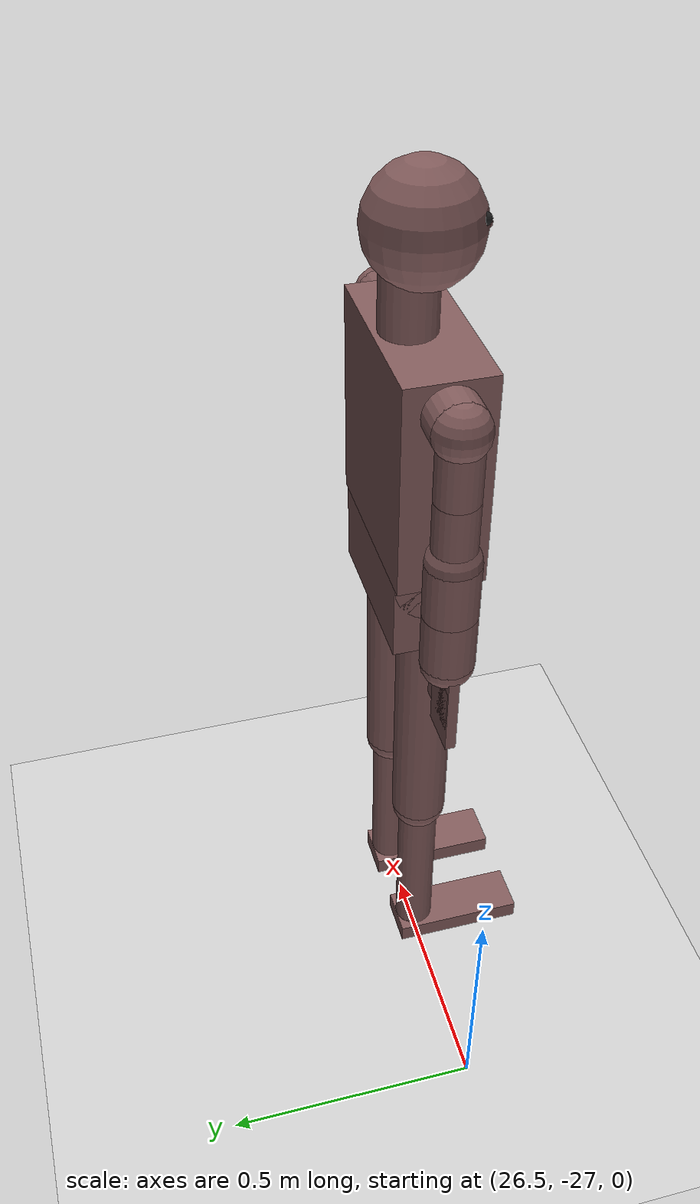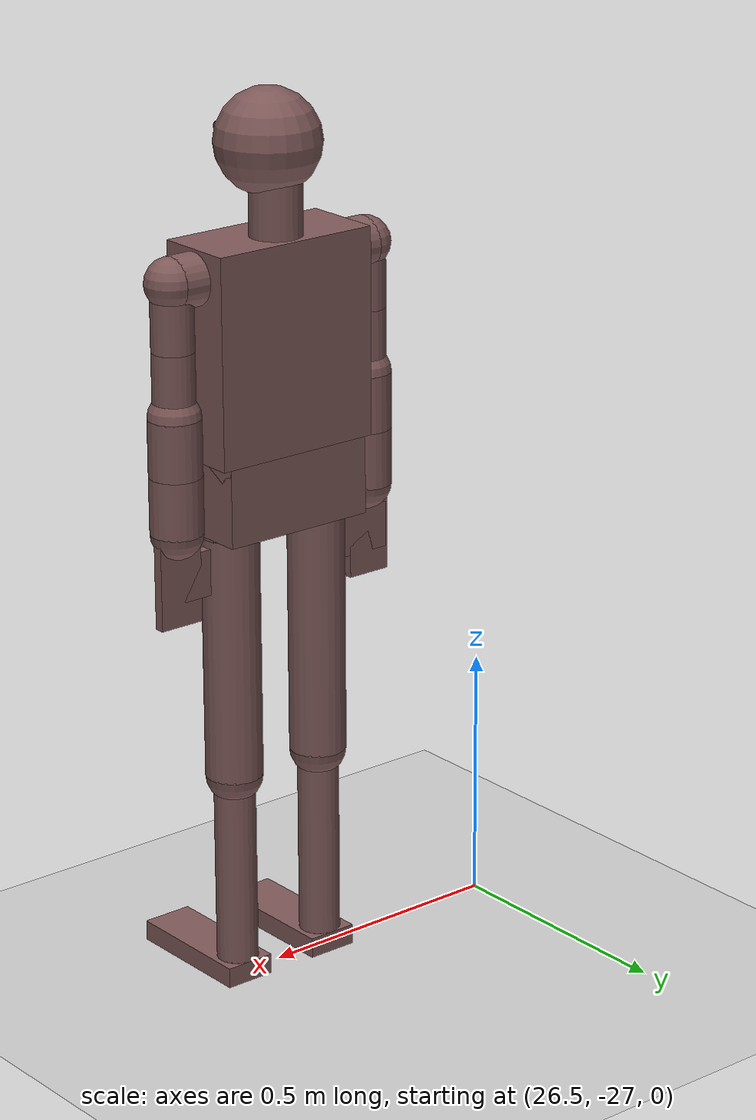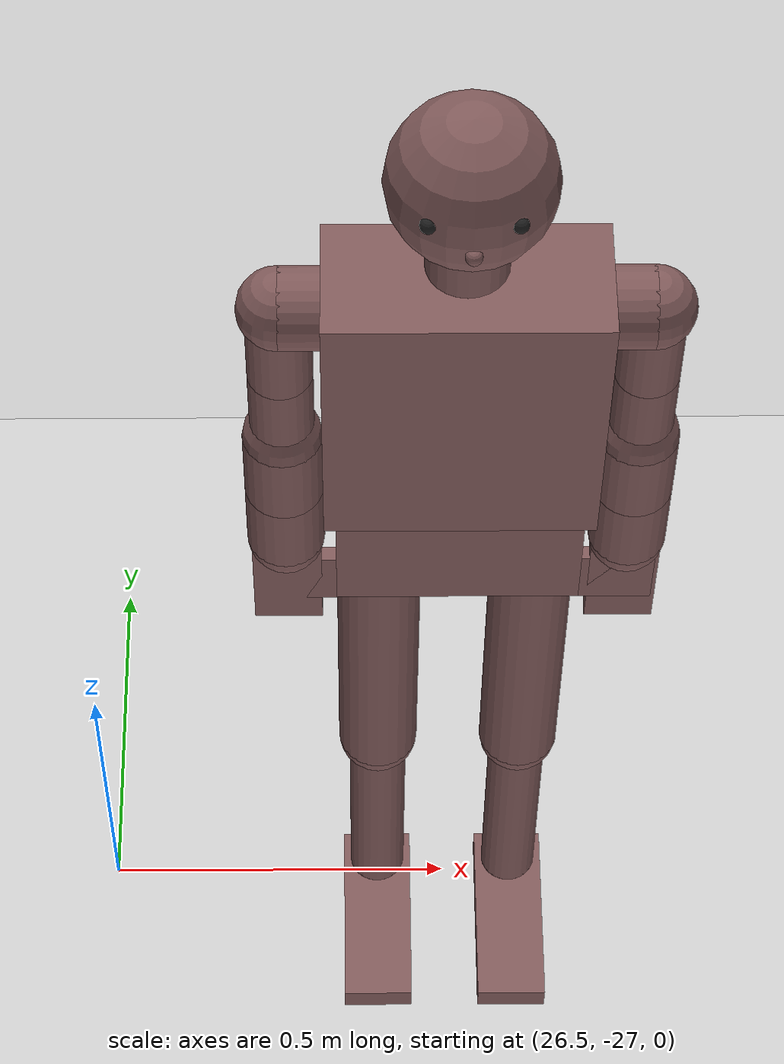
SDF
<sdf version="1.6">
 <world name="default">
  <model name="ground_plane">
   <static>1</static>
   <link name="link">
    <collision name="collision">
     <geometry><plane><normal>0 0 1</normal><size>100 100</size></plane></geometry>
     <surface><friction><ode><mu>100</mu><mu2>50</mu2></ode></friction></surface>
    </collision>
    <visual name="visual">
     <cast_shadows>0</cast_shadows>
     <geometry><plane><normal>0 0 1</normal><size>100 100</size></plane></geometry>
     <material>
      <script><uri>file://media/materials/scripts/gazebo.material</uri><name>Gazebo/Grey</name></script>
     </material>
    </visual>
   </link>
  </model>
  <model name="victim175_hot_moving">
   <static>1</static>
   <self_collide>1</self_collide>
   <link name="head">
    <pose>0 0 1.625 0 -0 0</pose>
    <visual name="visual">
     <geometry><sphere><radius>0.1</radius></sphere></geometry>
     <material>
      <emissive>0.5 0.35 0.35 1</emissive>
      <ambient>0.5 0.35 0.35 1</ambient>
      <diffuse>0.5 0.35 0.35 1</diffuse>
      <specular>0 0 0 0</specular>
     </material>
    </visual>
    <collision name="collision"><geometry><sphere><radius>0.1</radius></sphere></geometry></collision>
    <visual name="visual_nose">
     <pose>0 -0.1 -0.01 0 -0 0</pose>
     <geometry><sphere><radius>0.01</radius></sphere></geometry>
     <material>
      <emissive>0.5 0.35 0.35 1</emissive>
      <ambient>0.5 0.35 0.35 1</ambient>
      <diffuse>0.5 0.35 0.35 1</diffuse>
      <specular>0 0 0 0</specular>
     </material>
    </visual>
    <visual name="visual_rEye">
     <pose>-0.05 -0.08 0.02 0 -0 0</pose>
     <geometry><sphere><radius>0.01</radius></sphere></geometry>
     <material>
      <script><uri>file://media/materials/scripts/gazebo.material</uri><name>Gazebo/Black</name></script>
     </material>
    </visual>
    <visual name="visual_lEye">
     <pose>0.05 -0.08 0.02 0 -0 0</pose>
     <geometry><sphere><radius>0.01</radius></sphere></geometry>
     <material>
      <script><uri>file://media/materials/scripts/gazebo.material</uri><name>Gazebo/Black</name></script>
     </material>
    </visual>
    <self_collide>1</self_collide>
   </link>
   <link name="neck">
    <pose>0 0.02 1.49 0 -0 0</pose>
    <visual name="visual">
     <geometry><cylinder><radius>0.05</radius><length>0.15</length></cylinder></geometry>
     <material>
      <emissive>0.5 0.35 0.35 1</emissive>
      <ambient>0.5 0.35 0.35 1</ambient>
      <diffuse>0.5 0.35 0.35 1</diffuse>
      <specular>0 0 0 0</specular>
     </material>
    </visual>
    <collision name="collision">
     <geometry><cylinder><radius>0.05</radius><length>0.15</length></cylinder></geometry>
    </collision>
    <self_collide>1</self_collide>
   </link>
   <joint name="neck_head" type="revolute">
    <pose>0 0.02 -0.075 0 -0 0</pose>
    <child>head</child>
    <parent>neck</parent>
    <axis>
     <xyz>0 0 -1</xyz>
     <limit><lower>-1.7</lower><upper>1.7</upper></limit>
     <dynamics>
      <friction>0.01</friction>
      <spring_reference>0</spring_reference>
      <spring_stiffness>0</spring_stiffness>
     </dynamics>
     <use_parent_model_frame>0</use_parent_model_frame>
    </axis>
   </joint>
   <link name="body">
    <pose>0 0 1.255 0 -0 0</pose>
    <visual name="visual">
     <geometry><box><size>0.34 0.16 0.4</size></box></geometry>
     <material>
      <emissive>0.5 0.35 0.35 1</emissive>
      <ambient>0.5 0.35 0.35 1</ambient>
      <diffuse>0.5 0.35 0.35 1</diffuse>
      <specular>0 0 0 0</specular>
     </material>
    </visual>
    <collision name="collision"><geometry><box><size>0.34 0.16 0.4</size></box></geometry></collision>
    <self_collide>1</self_collide>
   </link>
   <joint name="body_neck" type="revolute">
    <pose>0 0.06 -0.075 0 -0 0</pose>
    <child>neck</child>
    <parent>body</parent>
    <axis>
     <xyz>1 0 0</xyz>
     <limit><lower>-0.2</lower><upper>1</upper></limit>
     <dynamics>
      <friction>0.01</friction>
      <spring_reference>0</spring_reference>
      <spring_stiffness>0</spring_stiffness>
     </dynamics>
     <use_parent_model_frame>0</use_parent_model_frame>
    </axis>
   </joint>
   <link name="waist">
    <pose>0 0 1.005 0 -0 0</pose>
    <visual name="visual">
     <pose>0 0 -0.025 0 -0 0</pose>
     <geometry><box><size>0.31 0.16 0.15</size></box></geometry>
     <material>
      <emissive>0.5 0.35 0.35 1</emissive>
      <ambient>0.5 0.35 0.35 1</ambient>
      <diffuse>0.5 0.35 0.35 1</diffuse>
      <specular>0 0 0 0</specular>
     </material>
    </visual>
    <collision name="collision"><geometry><box><size>0.31 0.16 0.1</size></box></geometry></collision>
    <visual name="visual2">
     <pose>0 0 0.05 3.14159 1.57079 3.14159</pose>
     <geometry><cylinder><radius>0.08</radius><length>0.31</length></cylinder></geometry>
     <material>
      <emissive>0.5 0.35 0.35 1</emissive>
      <ambient>0.5 0.35 0.35 1</ambient>
      <diffuse>0.5 0.35 0.35 1</diffuse>
      <specular>0 0 0 0</specular>
     </material>
    </visual>
    <collision name="collision2">
     <pose>0 0 0.05 3.14159 1.57079 3.14159</pose>
     <geometry><cylinder><radius>0.08</radius><length>0.31</length></cylinder></geometry>
    </collision>
    <self_collide>1</self_collide>
   </link>
   <joint name="body_waist" type="revolute">
    <pose>0 0 0.05 0 -0 0</pose>
    <child>waist</child>
    <parent>body</parent>
    <axis>
     <xyz>-1 0 0</xyz>
     <limit><lower>0</lower><upper>0</upper></limit>
     <dynamics>
      <friction>0.01</friction>
      <spring_reference>0</spring_reference>
      <spring_stiffness>0</spring_stiffness>
     </dynamics>
     <use_parent_model_frame>0</use_parent_model_frame>
    </axis>
   </joint>
   <link name="rHand">
    <pose>-0.22 0 0.84 0 -0 0</pose>
    <visual name="visual">
     <geometry><box><size>0.09 0.02 0.18</size></box></geometry>
     <material>
      <emissive>0.5 0.35 0.35 1</emissive>
      <ambient>0.5 0.35 0.35 1</ambient>
      <diffuse>0.5 0.35 0.35 1</diffuse>
      <specular>0 0 0 0</specular>
     </material>
    </visual>
    <collision name="collision"><geometry><box><size>0.09 0.02 0.18</size></box></geometry></collision>
    <visual name="visual2">
     <pose>0.02 0 0 0 -0 0</pose>
     <geometry><box><size>0.12 0.02 0.09</size></box></geometry>
     <material>
      <emissive>0.5 0.35 0.35 1</emissive>
      <ambient>0.5 0.35 0.35 1</ambient>
      <diffuse>0.5 0.35 0.35 1</diffuse>
      <specular>0 0 0 0</specular>
     </material>
    </visual>
    <collision name="collision2">
     <pose>0.02 0 0 0 -0 0</pose>
     <geometry><box><size>0.12 0.02 0.09</size></box></geometry>
    </collision>
    <self_collide>1</self_collide>
   </link>
   <link name="lHand">
    <pose>0.22 0 0.84 0 -0 0</pose>
    <visual name="visual">
     <geometry><box><size>0.09 0.02 0.18</size></box></geometry>
     <material>
      <emissive>0.5 0.35 0.35 1</emissive>
      <ambient>0.5 0.35 0.35 1</ambient>
      <diffuse>0.5 0.35 0.35 1</diffuse>
      <specular>0 0 0 0</specular>
     </material>
    </visual>
    <collision name="collision"><geometry><box><size>0.09 0.02 0.18</size></box></geometry></collision>
    <visual name="visual2">
     <pose>-0.02 0 0 0 -0 0</pose>
     <geometry><box><size>0.12 0.02 0.09</size></box></geometry>
     <material>
      <emissive>0.5 0.35 0.35 1</emissive>
      <ambient>0.5 0.35 0.35 1</ambient>
      <diffuse>0.5 0.35 0.35 1</diffuse>
      <specular>0 0 0 0</specular>
     </material>
    </visual>
    <collision name="collision2">
     <pose>-0.02 0 0 0 -0 0</pose>
     <geometry><box><size>0.12 0.02 0.09</size></box></geometry>
    </collision>
    <self_collide>1</self_collide>
   </link>
   <link name="rFoot">
    <pose>-0.1 -0.095 0.02 0 -0 0</pose>
    <visual name="visual">
     <geometry><box><size>0.1 0.27 0.04</size></box></geometry>
     <material>
      <emissive>0.5 0.35 0.35 1</emissive>
      <ambient>0.5 0.35 0.35 1</ambient>
      <diffuse>0.5 0.35 0.35 1</diffuse>
      <specular>0 0 0 0</specular>
     </material>
    </visual>
    <collision name="collision"><geometry><box><size>0.1 0.27 0.04</size></box></geometry></collision>
    <self_collide>1</self_collide>
   </link>
   <link name="lFoot">
    <pose>0.1 -0.095 0.02 0 -0 0</pose>
    <visual name="visual">
     <geometry><box><size>0.1 0.27 0.04</size></box></geometry>
     <material>
      <emissive>0.5 0.35 0.35 1</emissive>
      <ambient>0.5 0.35 0.35 1</ambient>
      <diffuse>0.5 0.35 0.35 1</diffuse>
      <specular>0 0 0 0</specular>
     </material>
    </visual>
    <collision name="collision"><geometry><box><size>0.1 0.27 0.04</size></box></geometry></collision>
    <self_collide>1</self_collide>
   </link>
   <link name="rLeg2">
    <pose>-0.1 0 0.23 0 -0 0</pose>
    <visual name="visual">
     <geometry><cylinder><radius>0.04</radius><length>0.38</length></cylinder></geometry>
     <material>
      <emissive>0.5 0.35 0.35 1</emissive>
      <ambient>0.5 0.35 0.35 1</ambient>
      <diffuse>0.5 0.35 0.35 1</diffuse>
      <specular>0 0 0 0</specular>
     </material>
    </visual>
    <collision name="collision">
     <geometry><cylinder><radius>0.04</radius><length>0.38</length></cylinder></geometry>
    </collision>
    <visual name="visual2">
     <pose>0 0 -0.19 0 -0 0</pose>
     <geometry><sphere><radius>0.04</radius></sphere></geometry>
     <material>
      <emissive>0.5 0.35 0.35 1</emissive>
      <ambient>0.5 0.35 0.35 1</ambient>
      <diffuse>0.5 0.35 0.35 1</diffuse>
      <specular>0 0 0 0</specular>
     </material>
    </visual>
    <collision name="collision2">
     <pose>0 0 -0.19 0 -0 0</pose>
     <geometry><sphere><radius>0.04</radius></sphere></geometry>
    </collision>
    <self_collide>1</self_collide>
   </link>
   <link name="lLeg2">
    <pose>0.1 0 0.23 0 -0 0</pose>
    <visual name="visual">
     <geometry><cylinder><radius>0.04</radius><length>0.38</length></cylinder></geometry>
     <material>
      <emissive>0.5 0.35 0.35 1</emissive>
      <ambient>0.5 0.35 0.35 1</ambient>
      <diffuse>0.5 0.35 0.35 1</diffuse>
      <specular>0 0 0 0</specular>
     </material>
    </visual>
    <collision name="collision">
     <geometry><cylinder><radius>0.04</radius><length>0.38</length></cylinder></geometry>
    </collision>
    <visual name="visual2">
     <pose>0 0 -0.19 0 -0 0</pose>
     <geometry><sphere><radius>0.04</radius></sphere></geometry>
     <material>
      <emissive>0.5 0.35 0.35 1</emissive>
      <ambient>0.5 0.35 0.35 1</ambient>
      <diffuse>0.5 0.35 0.35 1</diffuse>
      <specular>0 0 0 0</specular>
     </material>
    </visual>
    <collision name="collision2">
     <pose>0 0 -0.19 0 -0 0</pose>
     <geometry><sphere><radius>0.04</radius></sphere></geometry>
    </collision>
    <self_collide>1</self_collide>
   </link>
   <joint name="rLeg2_rFoot" type="revolute">
    <pose>0 0.095 0.02 0 -0 0</pose>
    <child>rFoot</child>
    <parent>rLeg2</parent>
    <axis>
     <xyz>1 0 0</xyz>
     <limit><lower>0</lower><upper>0</upper></limit>
     <dynamics>
      <friction>0.01</friction>
      <spring_reference>0</spring_reference>
      <spring_stiffness>0</spring_stiffness>
     </dynamics>
     <use_parent_model_frame>0</use_parent_model_frame>
    </axis>
   </joint>
   <joint name="lLeg2_lFoot" type="revolute">
    <pose>0 0.095 0.02 0 -0 0</pose>
    <child>lFoot</child>
    <parent>lLeg2</parent>
    <axis>
     <xyz>1 0 0</xyz>
     <limit><lower>0</lower><upper>0</upper></limit>
     <dynamics>
      <friction>0.01</friction>
      <spring_reference>0</spring_reference>
      <spring_stiffness>0</spring_stiffness>
     </dynamics>
     <use_parent_model_frame>0</use_parent_model_frame>
    </axis>
   </joint>
   <link name="rLeg1">
    <pose>-0.1 0 0.66 0 -0 0</pose>
    <visual name="visual">
     <geometry><cylinder><radius>0.055</radius><length>0.48</length></cylinder></geometry>
     <material>
      <emissive>0.5 0.35 0.35 1</emissive>
      <ambient>0.5 0.35 0.35 1</ambient>
      <diffuse>0.5 0.35 0.35 1</diffuse>
      <specular>0 0 0 0</specular>
     </material>
    </visual>
    <collision name="collision">
     <geometry><cylinder><radius>0.055</radius><length>0.48</length></cylinder></geometry>
    </collision>
    <visual name="visual2">
     <pose>0 0 -0.24 0 -0 0</pose>
     <geometry><sphere><radius>0.055</radius></sphere></geometry>
     <material>
      <emissive>0.5 0.35 0.35 1</emissive>
      <ambient>0.5 0.35 0.35 1</ambient>
      <diffuse>0.5 0.35 0.35 1</diffuse>
      <specular>0 0 0 0</specular>
     </material>
    </visual>
    <collision name="collision2">
     <pose>0 0 -0.24 0 -0 0</pose>
     <geometry><sphere><radius>0.055</radius></sphere></geometry>
    </collision>
    <visual name="visual3">
     <pose>0 0 0.24 0 -0 0</pose>
     <geometry><sphere><radius>0.055</radius></sphere></geometry>
     <material>
      <emissive>0.5 0.35 0.35 1</emissive>
      <ambient>0.5 0.35 0.35 1</ambient>
      <diffuse>0.5 0.35 0.35 1</diffuse>
      <specular>0 0 0 0</specular>
     </material>
    </visual>
    <collision name="collision3">
     <pose>0 0 0.24 0 -0 0</pose>
     <geometry><sphere><radius>0.055</radius></sphere></geometry>
    </collision>
    <self_collide>1</self_collide>
   </link>
   <link name="lLeg1">
    <pose>0.1 0 0.66 0 -0 0</pose>
    <visual name="visual">
     <geometry><cylinder><radius>0.055</radius><length>0.48</length></cylinder></geometry>
     <material>
      <emissive>0.5 0.35 0.35 1</emissive>
      <ambient>0.5 0.35 0.35 1</ambient>
      <diffuse>0.5 0.35 0.35 1</diffuse>
      <specular>0 0 0 0</specular>
     </material>
    </visual>
    <collision name="collision">
     <geometry><cylinder><radius>0.055</radius><length>0.48</length></cylinder></geometry>
    </collision>
    <visual name="visual2">
     <pose>0 0 -0.24 0 -0 0</pose>
     <geometry><sphere><radius>0.055</radius></sphere></geometry>
     <material>
      <emissive>0.5 0.35 0.35 1</emissive>
      <ambient>0.5 0.35 0.35 1</ambient>
      <diffuse>0.5 0.35 0.35 1</diffuse>
      <specular>0 0 0 0</specular>
     </material>
    </visual>
    <collision name="collision2">
     <pose>0 0 -0.24 0 -0 0</pose>
     <geometry><sphere><radius>0.055</radius></sphere></geometry>
    </collision>
    <visual name="visual3">
     <pose>0 0 0.24 0 -0 0</pose>
     <geometry><sphere><radius>0.055</radius></sphere></geometry>
     <material>
      <emissive>0.5 0.35 0.35 1</emissive>
      <ambient>0.5 0.35 0.35 1</ambient>
      <diffuse>0.5 0.35 0.35 1</diffuse>
      <specular>0 0 0 0</specular>
     </material>
    </visual>
    <collision name="collision3">
     <pose>0 0 0.24 0 -0 0</pose>
     <geometry><sphere><radius>0.055</radius></sphere></geometry>
    </collision>
    <self_collide>1</self_collide>
   </link>
   <joint name="rLeg1_rLeg2" type="revolute">
    <pose>0 0 0.19 0 -0 0</pose>
    <child>rLeg2</child>
    <parent>rLeg1</parent>
    <axis>
     <xyz>1 0 0</xyz>
     <limit><lower>0</lower><upper>0</upper></limit>
     <dynamics>
      <friction>0.01</friction>
      <spring_reference>0</spring_reference>
      <spring_stiffness>0</spring_stiffness>
     </dynamics>
     <use_parent_model_frame>0</use_parent_model_frame>
    </axis>
   </joint>
   <joint name="lLeg1_lLeg2" type="revolute">
    <pose>0 0 0.19 0 -0 0</pose>
    <child>lLeg2</child>
    <parent>lLeg1</parent>
    <axis>
     <xyz>1 0 0</xyz>
     <limit><lower>0</lower><upper>0</upper></limit>
     <dynamics>
      <friction>0.01</friction>
      <spring_reference>0</spring_reference>
      <spring_stiffness>0</spring_stiffness>
     </dynamics>
     <use_parent_model_frame>0</use_parent_model_frame>
    </axis>
   </joint>
   <link name="rButt">
    <pose>-0.1 0 0.9275 0 -0 0</pose>
    <visual name="visual">
     <geometry><cylinder><radius>0.055</radius><length>0.055</length></cylinder></geometry>
     <material>
      <emissive>0.5 0.35 0.35 1</emissive>
      <ambient>0.5 0.35 0.35 1</ambient>
      <diffuse>0.5 0.35 0.35 1</diffuse>
      <specular>0 0 0 0</specular>
     </material>
    </visual>
    <collision name="collision">
     <geometry><cylinder><radius>0.055</radius><length>0.055</length></cylinder></geometry>
    </collision>
    <self_collide>1</self_collide>
   </link>
   <link name="lButt">
    <pose>0.1 0 0.9275 0 -0 0</pose>
    <visual name="visual">
     <geometry><cylinder><radius>0.055</radius><length>0.055</length></cylinder></geometry>
     <material>
      <emissive>0.5 0.35 0.35 1</emissive>
      <ambient>0.5 0.35 0.35 1</ambient>
      <diffuse>0.5 0.35 0.35 1</diffuse>
      <specular>0 0 0 0</specular>
     </material>
    </visual>
    <collision name="collision">
     <geometry><cylinder><radius>0.055</radius><length>0.055</length></cylinder></geometry>
    </collision>
    <self_collide>1</self_collide>
   </link>
   <joint name="rButt_rLeg1" type="revolute">
    <pose>0 0 0.24 0 -0 0</pose>
    <child>rLeg1</child>
    <parent>rButt</parent>
    <axis>
     <xyz>1 0 0</xyz>
     <limit><lower>0</lower><upper>0</upper></limit>
     <dynamics>
      <friction>0.01</friction>
      <spring_reference>0</spring_reference>
      <spring_stiffness>0</spring_stiffness>
     </dynamics>
     <use_parent_model_frame>0</use_parent_model_frame>
    </axis>
   </joint>
   <joint name="lButt_lLeg1" type="revolute">
    <pose>0 0 0.24 0 -0 0</pose>
    <child>lLeg1</child>
    <parent>lButt</parent>
    <axis>
     <xyz>1 0 0</xyz>
     <limit><lower>0</lower><upper>0</upper></limit>
     <dynamics>
      <friction>0.01</friction>
      <spring_reference>0</spring_reference>
      <spring_stiffness>0</spring_stiffness>
     </dynamics>
     <use_parent_model_frame>0</use_parent_model_frame>
    </axis>
   </joint>
   <joint name="waist_rButt" type="revolute">
    <child>rButt</child>
    <parent>waist</parent>
    <axis>
     <xyz>0 0 -1</xyz>
     <limit><lower>-1</lower><upper>1</upper></limit>
     <dynamics>
      <friction>0.01</friction>
      <spring_reference>0</spring_reference>
      <spring_stiffness>0</spring_stiffness>
     </dynamics>
     <use_parent_model_frame>0</use_parent_model_frame>
    </axis>
   </joint>
   <joint name="waist_lButt" type="revolute">
    <child>lButt</child>
    <parent>waist</parent>
    <axis>
     <xyz>0 0 1</xyz>
     <limit><lower>-1</lower><upper>1</upper></limit>
     <dynamics>
      <friction>0.01</friction>
      <spring_reference>0</spring_reference>
      <spring_stiffness>0</spring_stiffness>
     </dynamics>
     <use_parent_model_frame>0</use_parent_model_frame>
    </axis>
   </joint>
   <link name="rShoulder">
    <pose>-0.195 0 1.4 0 -0 0</pose>
    <visual name="visual">
     <pose>0 0 0 3.14159 1.57079 3.14159</pose>
     <geometry><cylinder><radius>0.05</radius><length>0.05</length></cylinder></geometry>
     <material>
      <emissive>0.5 0.35 0.35 1</emissive>
      <ambient>0.5 0.35 0.35 1</ambient>
      <diffuse>0.5 0.35 0.35 1</diffuse>
      <specular>0 0 0 0</specular>
     </material>
    </visual>
    <collision name="collision">
     <pose>0 0 0 3.14159 1.57079 3.14159</pose>
     <geometry><cylinder><radius>0.05</radius><length>0.05</length></cylinder></geometry>
    </collision>
    <self_collide>1</self_collide>
   </link>
   <link name="lShoulder">
    <pose>0.195 0 1.4 0 -0 0</pose>
    <visual name="visual">
     <pose>0 0 0 3.14159 1.57079 3.14159</pose>
     <geometry><cylinder><radius>0.05</radius><length>0.05</length></cylinder></geometry>
     <material>
      <emissive>0.5 0.35 0.35 1</emissive>
      <ambient>0.5 0.35 0.35 1</ambient>
      <diffuse>0.5 0.35 0.35 1</diffuse>
      <specular>0 0 0 0</specular>
     </material>
    </visual>
    <collision name="collision">
     <pose>0 0 0 3.14159 1.57079 3.14159</pose>
     <geometry><cylinder><radius>0.05</radius><length>0.05</length></cylinder></geometry>
    </collision>
    <self_collide>1</self_collide>
   </link>
   <joint name="body_rShoulder" type="revolute">
    <child>rShoulder</child>
    <parent>body</parent>
    <axis>
     <xyz>-1 0 0</xyz>
     <limit><lower>-1.5708</lower><upper>3.2</upper></limit>
     <dynamics>
      <friction>0.01</friction>
      <spring_reference>0</spring_reference>
      <spring_stiffness>0</spring_stiffness>
     </dynamics>
     <use_parent_model_frame>0</use_parent_model_frame>
    </axis>
   </joint>
   <joint name="body_lShoulder" type="revolute">
    <child>lShoulder</child>
    <parent>body</parent>
    <axis>
     <xyz>1 0 0</xyz>
     <limit><lower>-1.5708</lower><upper>3.2</upper></limit>
     <dynamics>
      <friction>0.01</friction>
      <spring_reference>0</spring_reference>
      <spring_stiffness>0</spring_stiffness>
     </dynamics>
     <use_parent_model_frame>0</use_parent_model_frame>
    </axis>
   </joint>
   <link name="rArm1U">
    <pose>-0.22 0 1.3375 0 -0 0</pose>
    <visual name="visual">
     <geometry><cylinder><radius>0.04</radius><length>0.125</length></cylinder></geometry>
     <material>
      <emissive>0.5 0.35 0.35 1</emissive>
      <ambient>0.5 0.35 0.35 1</ambient>
      <diffuse>0.5 0.35 0.35 1</diffuse>
      <specular>0 0 0 0</specular>
     </material>
    </visual>
    <collision name="collision">
     <geometry><cylinder><radius>0.04</radius><length>0.125</length></cylinder></geometry>
    </collision>
    <visual name="visual2">
     <pose>0 0 0.0625 0 -0 0</pose>
     <geometry><sphere><radius>0.05</radius></sphere></geometry>
     <material>
      <emissive>0.5 0.35 0.35 1</emissive>
      <ambient>0.5 0.35 0.35 1</ambient>
      <diffuse>0.5 0.35 0.35 1</diffuse>
      <specular>0 0 0 0</specular>
     </material>
    </visual>
    <collision name="collision2">
     <pose>0 0 0.0625 0 -0 0</pose>
     <geometry><sphere><radius>0.05</radius></sphere></geometry>
    </collision>
    <self_collide>1</self_collide>
   </link>
   <link name="rArm1L">
    <pose>-0.22 0 1.2125 0 -0 0</pose>
    <visual name="visual">
     <geometry><cylinder><radius>0.04</radius><length>0.125</length></cylinder></geometry>
     <material>
      <emissive>0.5 0.35 0.35 1</emissive>
      <ambient>0.5 0.35 0.35 1</ambient>
      <diffuse>0.5 0.35 0.35 1</diffuse>
      <specular>0 0 0 0</specular>
     </material>
    </visual>
    <collision name="collision">
     <geometry><cylinder><radius>0.04</radius><length>0.125</length></cylinder></geometry>
    </collision>
    <visual name="visual2">
     <pose>0 0 -0.0625 0 -0 0</pose>
     <geometry><sphere><radius>0.05</radius></sphere></geometry>
     <material>
      <emissive>0.5 0.35 0.35 1</emissive>
      <ambient>0.5 0.35 0.35 1</ambient>
      <diffuse>0.5 0.35 0.35 1</diffuse>
      <specular>0 0 0 0</specular>
     </material>
    </visual>
    <collision name="collision2">
     <pose>0 0 -0.0625 0 -0 0</pose>
     <geometry><sphere><radius>0.05</radius></sphere></geometry>
    </collision>
    <self_collide>1</self_collide>
   </link>
   <joint name="rArm1U_rArm1L" type="revolute">
    <pose>0 0 0.0625 0 -0 0</pose>
    <child>rArm1L</child>
    <parent>rArm1U</parent>
    <axis>
     <xyz>0 0 -1</xyz>
     <limit><lower>-1.5708</lower><upper>1.5708</upper></limit>
     <dynamics>
      <friction>0.01</friction>
      <spring_reference>0</spring_reference>
      <spring_stiffness>0</spring_stiffness>
     </dynamics>
     <use_parent_model_frame>0</use_parent_model_frame>
    </axis>
   </joint>
   <link name="lArm1U">
    <pose>0.22 0 1.3375 0 -0 0</pose>
    <visual name="visual">
     <geometry><cylinder><radius>0.04</radius><length>0.125</length></cylinder></geometry>
     <material>
      <emissive>0.5 0.35 0.35 1</emissive>
      <ambient>0.5 0.35 0.35 1</ambient>
      <diffuse>0.5 0.35 0.35 1</diffuse>
      <specular>0 0 0 0</specular>
     </material>
    </visual>
    <collision name="collision">
     <geometry><cylinder><radius>0.04</radius><length>0.125</length></cylinder></geometry>
    </collision>
    <visual name="visual2">
     <pose>0 0 0.0625 0 -0 0</pose>
     <geometry><sphere><radius>0.05</radius></sphere></geometry>
     <material>
      <emissive>0.5 0.35 0.35 1</emissive>
      <ambient>0.5 0.35 0.35 1</ambient>
      <diffuse>0.5 0.35 0.35 1</diffuse>
      <specular>0 0 0 0</specular>
     </material>
    </visual>
    <collision name="collision2">
     <pose>0 0 0.0625 0 -0 0</pose>
     <geometry><sphere><radius>0.05</radius></sphere></geometry>
    </collision>
    <self_collide>1</self_collide>
   </link>
   <link name="lArm1L">
    <pose>0.22 0 1.2125 0 -0 0</pose>
    <visual name="visual">
     <geometry><cylinder><radius>0.04</radius><length>0.125</length></cylinder></geometry>
     <material>
      <emissive>0.5 0.35 0.35 1</emissive>
      <ambient>0.5 0.35 0.35 1</ambient>
      <diffuse>0.5 0.35 0.35 1</diffuse>
      <specular>0 0 0 0</specular>
     </material>
    </visual>
    <collision name="collision">
     <geometry><cylinder><radius>0.04</radius><length>0.125</length></cylinder></geometry>
    </collision>
    <visual name="visual2">
     <pose>0 0 -0.0625 0 -0 0</pose>
     <geometry><sphere><radius>0.05</radius></sphere></geometry>
     <material>
      <emissive>0.5 0.35 0.35 1</emissive>
      <ambient>0.5 0.35 0.35 1</ambient>
      <diffuse>0.5 0.35 0.35 1</diffuse>
      <specular>0 0 0 0</specular>
     </material>
    </visual>
    <collision name="collision2">
     <pose>0 0 -0.0625 0 -0 0</pose>
     <geometry><sphere><radius>0.05</radius></sphere></geometry>
    </collision>
    <self_collide>1</self_collide>
   </link>
   <joint name="lArm1U_lArm1L" type="revolute">
    <pose>0 0 0.0625 0 -0 0</pose>
    <child>lArm1L</child>
    <parent>lArm1U</parent>
    <axis>
     <xyz>0 0 1</xyz>
     <limit><lower>-1.5708</lower><upper>1.5708</upper></limit>
     <dynamics>
      <friction>0.01</friction>
      <spring_reference>0</spring_reference>
      <spring_stiffness>0</spring_stiffness>
     </dynamics>
     <use_parent_model_frame>0</use_parent_model_frame>
    </axis>
   </joint>
   <joint name="rShoulder_rArm1" type="revolute">
    <pose>0 0 0.0625 0 -0 0</pose>
    <child>rArm1U</child>
    <parent>rShoulder</parent>
    <axis>
     <xyz>0 -1 0</xyz>
     <limit><lower>-1.5708</lower><upper>3.2</upper></limit>
     <dynamics>
      <friction>0.01</friction>
      <spring_reference>0</spring_reference>
      <spring_stiffness>0</spring_stiffness>
     </dynamics>
     <use_parent_model_frame>0</use_parent_model_frame>
    </axis>
   </joint>
   <joint name="lShoulder_lArm1" type="revolute">
    <pose>0 0 0.0625 0 -0 0</pose>
    <child>lArm1U</child>
    <parent>lShoulder</parent>
    <axis>
     <xyz>0 1 0</xyz>
     <limit><lower>-1.5708</lower><upper>3.2</upper></limit>
     <dynamics>
      <friction>0.01</friction>
      <spring_reference>0</spring_reference>
      <spring_stiffness>0</spring_stiffness>
     </dynamics>
     <use_parent_model_frame>0</use_parent_model_frame>
    </axis>
   </joint>
   <link name="rArm2U">
    <pose>-0.22 0 1.095 0 -0 0</pose>
    <visual name="visual">
     <geometry><cylinder><radius>0.05</radius><length>0.11</length></cylinder></geometry>
     <material>
      <emissive>0.5 0.35 0.35 1</emissive>
      <ambient>0.5 0.35 0.35 1</ambient>
      <diffuse>0.5 0.35 0.35 1</diffuse>
      <specular>0 0 0 0</specular>
     </material>
    </visual>
    <collision name="collision">
     <geometry><cylinder><radius>0.05</radius><length>0.11</length></cylinder></geometry>
    </collision>
    <self_collide>1</self_collide>
   </link>
   <link name="rArm2L">
    <pose>-0.22 0 0.985 0 -0 0</pose>
    <visual name="visual">
     <geometry><cylinder><radius>0.05</radius><length>0.11</length></cylinder></geometry>
     <material>
      <emissive>0.5 0.35 0.35 1</emissive>
      <ambient>0.5 0.35 0.35 1</ambient>
      <diffuse>0.5 0.35 0.35 1</diffuse>
      <specular>0 0 0 0</specular>
     </material>
    </visual>
    <collision name="collision">
     <geometry><cylinder><radius>0.05</radius><length>0.11</length></cylinder></geometry>
    </collision>
    <visual name="visual2">
     <pose>0 0 -0.055 0 -0 0</pose>
     <geometry><sphere><radius>0.05</radius></sphere></geometry>
     <material>
      <emissive>0.5 0.35 0.35 1</emissive>
      <ambient>0.5 0.35 0.35 1</ambient>
      <diffuse>0.5 0.35 0.35 1</diffuse>
      <specular>0 0 0 0</specular>
     </material>
    </visual>
    <collision name="collision2">
     <pose>0 0 -0.055 0 -0 0</pose>
     <geometry><sphere><radius>0.05</radius></sphere></geometry>
    </collision>
    <self_collide>1</self_collide>
   </link>
   <joint name="rArm2U_rArm2L" type="revolute">
    <pose>0 0 0.055 0 -0 0</pose>
    <child>rArm2L</child>
    <parent>rArm2U</parent>
    <axis>
     <xyz>0 0 -1</xyz>
     <limit><lower>-1.5708</lower><upper>1.5708</upper></limit>
     <dynamics>
      <friction>0.01</friction>
      <spring_reference>0</spring_reference>
      <spring_stiffness>0</spring_stiffness>
     </dynamics>
     <use_parent_model_frame>0</use_parent_model_frame>
    </axis>
   </joint>
   <link name="lArm2U">
    <pose>0.22 0 1.095 0 -0 0</pose>
    <visual name="visual">
     <geometry><cylinder><radius>0.05</radius><length>0.11</length></cylinder></geometry>
     <material>
      <emissive>0.5 0.35 0.35 1</emissive>
      <ambient>0.5 0.35 0.35 1</ambient>
      <diffuse>0.5 0.35 0.35 1</diffuse>
      <specular>0 0 0 0</specular>
     </material>
    </visual>
    <collision name="collision">
     <geometry><cylinder><radius>0.05</radius><length>0.11</length></cylinder></geometry>
    </collision>
    <self_collide>1</self_collide>
   </link>
   <link name="lArm2L">
    <pose>0.22 0 0.985 0 -0 0</pose>
    <visual name="visual">
     <geometry><cylinder><radius>0.05</radius><length>0.11</length></cylinder></geometry>
     <material>
      <emissive>0.5 0.35 0.35 1</emissive>
      <ambient>0.5 0.35 0.35 1</ambient>
      <diffuse>0.5 0.35 0.35 1</diffuse>
      <specular>0 0 0 0</specular>
     </material>
    </visual>
    <collision name="collision">
     <geometry><cylinder><radius>0.05</radius><length>0.11</length></cylinder></geometry>
    </collision>
    <visual name="visual2">
     <pose>0 0 -0.055 0 -0 0</pose>
     <geometry><sphere><radius>0.05</radius></sphere></geometry>
     <material>
      <emissive>0.5 0.35 0.35 1</emissive>
      <ambient>0.5 0.35 0.35 1</ambient>
      <diffuse>0.5 0.35 0.35 1</diffuse>
      <specular>0 0 0 0</specular>
     </material>
    </visual>
    <collision name="collision2">
     <pose>0 0 -0.055 0 -0 0</pose>
     <geometry><sphere><radius>0.05</radius></sphere></geometry>
    </collision>
    <self_collide>1</self_collide>
   </link>
   <joint name="lArm2U_lArm2L" type="revolute">
    <pose>0 0 0.055 0 -0 0</pose>
    <child>lArm2L</child>
    <parent>lArm2U</parent>
    <axis>
     <xyz>0 0 1</xyz>
     <limit><lower>-1.5708</lower><upper>1.5708</upper></limit>
     <dynamics>
      <friction>0.01</friction>
      <spring_reference>0</spring_reference>
      <spring_stiffness>0</spring_stiffness>
     </dynamics>
     <use_parent_model_frame>0</use_parent_model_frame>
    </axis>
   </joint>
   <joint name="rArm1_rArm2" type="revolute">
    <pose>0 0 0.055 0 -0 0</pose>
    <child>rArm2U</child>
    <parent>rArm1L</parent>
    <axis>
     <xyz>-1 0 0</xyz>
     <limit><lower>0</lower><upper>2.8</upper></limit>
     <dynamics>
      <friction>0.01</friction>
      <spring_reference>0</spring_reference>
      <spring_stiffness>0</spring_stiffness>
     </dynamics>
     <use_parent_model_frame>0</use_parent_model_frame>
    </axis>
   </joint>
   <joint name="lArm1_lArm2" type="revolute">
    <pose>0 0 0.055 0 -0 0</pose>
    <child>lArm2U</child>
    <parent>lArm1L</parent>
    <axis>
     <xyz>-1 0 0</xyz>
     <limit><lower>0</lower><upper>2.8</upper></limit>
     <dynamics>
      <friction>0.01</friction>
      <spring_reference>0</spring_reference>
      <spring_stiffness>0</spring_stiffness>
     </dynamics>
     <use_parent_model_frame>0</use_parent_model_frame>
    </axis>
   </joint>
   <joint name="rArm2_rHand" type="revolute">
    <pose>0 0 0.09 0 -0 0</pose>
    <child>rHand</child>
    <parent>rArm2L</parent>
    <axis>
     <xyz>-1 0 0</xyz>
     <limit><lower>-1.57</lower><upper>1.4</upper></limit>
     <dynamics>
      <friction>0.01</friction>
      <spring_reference>0</spring_reference>
      <spring_stiffness>0</spring_stiffness>
     </dynamics>
     <use_parent_model_frame>0</use_parent_model_frame>
    </axis>
   </joint>
   <joint name="lArm2_lHand" type="revolute">
    <pose>0 0 0.09 0 -0 0</pose>
    <child>lHand</child>
    <parent>lArm2L</parent>
    <axis>
     <xyz>-1 0 0</xyz>
     <limit><lower>-1.57</lower><upper>1.4</upper></limit>
     <dynamics>
      <friction>0.01</friction>
      <spring_reference>0</spring_reference>
      <spring_stiffness>0</spring_stiffness>
     </dynamics>
     <use_parent_model_frame>0</use_parent_model_frame>
    </axis>
   </joint>
   <joint name="world_rFoot" type="revolute">
    <child>rFoot</child>
    <parent>world</parent>
    <axis>
     <xyz>0 0 1</xyz>
     <limit><lower>0</lower><upper>0</upper></limit>
     <use_parent_model_frame>0</use_parent_model_frame>
     <dynamics><spring_reference>0</spring_reference><spring_stiffness>0</spring_stiffness></dynamics>
    </axis>
   </joint>
   <joint name="world_lFoot" type="revolute">
    <child>lFoot</child>
    <parent>world</parent>
    <axis>
     <xyz>0 0 1</xyz>
     <limit><lower>0</lower><upper>0</upper></limit>
     <use_parent_model_frame>0</use_parent_model_frame>
     <dynamics><spring_reference>0</spring_reference><spring_stiffness>0</spring_stiffness></dynamics>
    </axis>
   </joint>
   <pose>27 -27 0 0 -0 0</pose>
  </model>
 </world>
</sdf>
